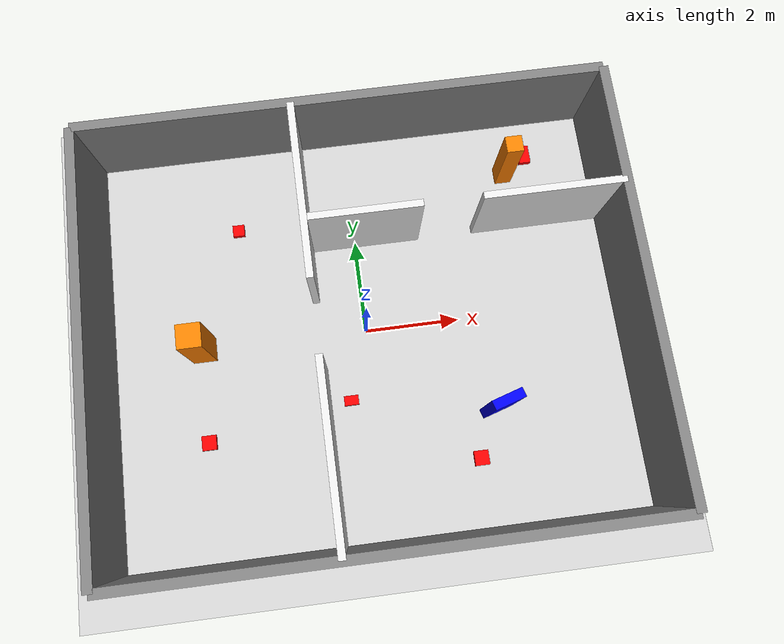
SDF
<?xml version="1.0" ?>
<!-- Simple 3-room layout for Gazebo Sim (Harmonic) -->
<sdf version="1.6">
  <world name="wheelchair_rooms">

    <!-- Gazebo Sim System Plugins -->
    <plugin filename="gz-sim-physics-system"
            name="gz::sim::systems::Physics">
    </plugin>
    <plugin filename="gz-sim-user-commands-system"
            name="gz::sim::systems::UserCommands">
    </plugin>
    <plugin filename="gz-sim-scene-broadcaster-system"
            name="gz::sim::systems::SceneBroadcaster">
    </plugin>
    <plugin filename="gz-sim-sensors-system"
            name="gz::sim::systems::Sensors">
      <render_engine>ogre2</render_engine>
    </plugin>

    <physics name="default_physics" type="ode" default="true">
      <max_step_size>0.005</max_step_size>
      <real_time_factor>1.0</real_time_factor>
      <real_time_update_rate>200</real_time_update_rate>
      <ode>
        <solver>
          <type>quick</type>
          <iters>80</iters>
          <sor>1.4</sor>
        </solver>
        <constraints>
          <cfm>0.0</cfm>
          <erp>0.15</erp>
          <contact_max_correcting_vel>0.2</contact_max_correcting_vel>
          <contact_surface_layer>0.0015</contact_surface_layer>
        </constraints>
      </ode>
    </physics>

    <!-- Sun (inline directional light instead of model://sun) -->
    <light type="directional" name="sun">
      <cast_shadows>true</cast_shadows>
      <pose>0 0 10 0 0 0</pose>
      <diffuse>0.8 0.8 0.8 1</diffuse>
      <specular>0.2 0.2 0.2 1</specular>
      <attenuation>
        <range>1000</range>
        <constant>0.9</constant>
        <linear>0.01</linear>
        <quadratic>0.001</quadratic>
      </attenuation>
      <direction>-0.5 0.1 -0.9</direction>
    </light>

    <!-- Ground Plane (inline instead of model://ground_plane) -->
    <model name="ground_plane">
      <static>true</static>
      <link name="link">
        <collision name="collision">
          <geometry>
            <plane>
              <normal>0 0 1</normal>
              <size>100 100</size>
            </plane>
          </geometry>
        </collision>
        <visual name="visual">
          <geometry>
            <plane>
              <normal>0 0 1</normal>
              <size>100 100</size>
            </plane>
          </geometry>
          <material>
            <ambient>0.8 0.8 0.8 1</ambient>
            <diffuse>0.8 0.8 0.8 1</diffuse>
            <specular>0.8 0.8 0.8 1</specular>
          </material>
        </visual>
      </link>
    </model>

    <!-- Outer shell ~11 m x 9 m inner floor -->
    <model name="wall_outer_n">
      <static>true</static>
      <pose>0 4.5 1.0 0 0 0</pose>
      <link name="link">
        <collision name="c"><geometry><box><size>11 0.2 2.0</size></box></geometry></collision>
        <visual name="v"><geometry><box><size>11 0.2 2.0</size></box></geometry>
          <material><ambient>0.5 0.5 0.5 1</ambient><diffuse>0.5 0.5 0.5 1</diffuse></material></visual>
      </link>
    </model>
    <model name="wall_outer_s">
      <static>true</static>
      <pose>0 -4.5 1.0 0 0 0</pose>
      <link name="link">
        <collision name="c"><geometry><box><size>11 0.2 2.0</size></box></geometry></collision>
        <visual name="v"><geometry><box><size>11 0.2 2.0</size></box></geometry>
          <material><ambient>0.5 0.5 0.5 1</ambient><diffuse>0.5 0.5 0.5 1</diffuse></material></visual>
      </link>
    </model>
    <model name="wall_outer_w">
      <static>true</static>
      <pose>-5.5 0 1.0 0 0 0</pose>
      <link name="link">
        <collision name="c"><geometry><box><size>0.2 9 2.0</size></box></geometry></collision>
        <visual name="v"><geometry><box><size>0.2 9 2.0</size></box></geometry>
          <material><ambient>0.5 0.5 0.5 1</ambient><diffuse>0.5 0.5 0.5 1</diffuse></material></visual>
      </link>
    </model>
    <model name="wall_outer_e">
      <static>true</static>
      <pose>5.5 0 1.0 0 0 0</pose>
      <link name="link">
        <collision name="c"><geometry><box><size>0.2 9 2.0</size></box></geometry></collision>
        <visual name="v"><geometry><box><size>0.2 9 2.0</size></box></geometry>
          <material><ambient>0.5 0.5 0.5 1</ambient><diffuse>0.5 0.5 0.5 1</diffuse></material></visual>
      </link>
    </model>

    <!-- Vertical partition at x = -1, doorway centered on origin (y gap +/-0.75) -->
    <model name="wall_div_v_low">
      <static>true</static>
      <pose>-1 -2.625 1.0 0 0 0</pose>
      <link name="link">
        <collision name="c"><geometry><box><size>0.15 3.75 2.0</size></box></geometry></collision>
        <visual name="v"><geometry><box><size>0.15 3.75 2.0</size></box></geometry>
          <material><ambient>0.9 0.9 0.9 1</ambient><diffuse>0.9 0.9 0.9 1</diffuse></material></visual>
      </link>
    </model>
    <model name="wall_div_v_high">
      <static>true</static>
      <pose>-1 2.625 1.0 0 0 0</pose>
      <link name="link">
        <collision name="c"><geometry><box><size>0.15 3.75 2.0</size></box></geometry></collision>
        <visual name="v"><geometry><box><size>0.15 3.75 2.0</size></box></geometry>
          <material><ambient>0.9 0.9 0.9 1</ambient><diffuse>0.9 0.9 0.9 1</diffuse></material></visual>
      </link>
    </model>

    <!-- Horizontal partition at y = 2, door gap around x = 2 -->
    <model name="wall_div_h_left">
      <static>true</static>
      <pose>0.2375 2 1.0 0 0 0</pose>
      <link name="link">
        <collision name="c"><geometry><box><size>2.325 0.15 2.0</size></box></geometry></collision>
        <visual name="v"><geometry><box><size>2.325 0.15 2.0</size></box></geometry>
          <material><ambient>0.9 0.9 0.9 1</ambient><diffuse>0.9 0.9 0.9 1</diffuse></material></visual>
      </link>
    </model>
    <model name="wall_div_h_right">
      <static>true</static>
      <pose>4.05 2 1.0 0 0 0</pose>
      <link name="link">
        <collision name="c"><geometry><box><size>2.9 0.15 2.0</size></box></geometry></collision>
        <visual name="v"><geometry><box><size>2.9 0.15 2.0</size></box></geometry>
          <material><ambient>0.9 0.9 0.9 1</ambient><diffuse>0.9 0.9 0.9 1</diffuse></material></visual>
      </link>
    </model>

    <!-- Obstacles inside rooms -->
    <model name="obs_box_left">
      <static>true</static>
      <pose>-3.5 0 0.8 0 0 0</pose>
      <link name="link">
        <collision name="c"><geometry><box><size>0.5 0.5 1.6</size></box></geometry></collision>
        <visual name="v"><geometry><box><size>0.5 0.5 1.6</size></box></geometry>
          <material><ambient>1.0 0.5 0.0 1</ambient><diffuse>1.0 0.5 0.0 1</diffuse></material></visual>
      </link>
    </model>
    <model name="obs_box_br">
      <static>true</static>
      <pose>2.5 -2 0.8 0 0 0.3</pose>
      <link name="link">
        <collision name="c"><geometry><box><size>0.65 0.2 1.6</size></box></geometry></collision>
        <visual name="v"><geometry><box><size>0.65 0.2 1.6</size></box></geometry>
          <material><ambient>0.0 0.0 1.0 1</ambient><diffuse>0.0 0.0 1.0 1</diffuse></material></visual>
      </link>
    </model>
    <model name="obs_box_tr">
      <static>true</static>
      <pose>3.5 3.2 0.8 0 0 0</pose>
      <link name="link">
        <collision name="c"><geometry><box><size>0.35 0.35 1.6</size></box></geometry></collision>
        <visual name="v"><geometry><box><size>0.35 0.35 1.6</size></box></geometry>
          <material><ambient>1.0 0.5 0.0 1</ambient><diffuse>1.0 0.5 0.0 1</diffuse></material></visual>
      </link>
    </model>

    <!-- Left room — mid path, robot must steer around it -->
    <model name="us_obs_left_1">
      <static>true</static>
      <pose>-3.5 -2.0 0.30 0 0 0</pose>
      <link name="link">
        <collision name="c"><geometry><box><size>0.30 0.30 0.10</size></box></geometry></collision>
        <visual name="v"><geometry><box><size>0.30 0.30 0.10</size></box></geometry>
          <material><ambient>1.0 0.0 0.0 1</ambient><diffuse>1.0 0.0 0.0 1</diffuse></material></visual>
      </link>
    </model>

    <!-- Left room — near wall, robot must avoid while passing -->
    <model name="us_obs_left_2">
      <static>true</static>
      <pose>-2.5 2.5 0.30 0 0 0</pose>
      <link name="link">
        <collision name="c"><geometry><box><size>0.25 0.25 0.10</size></box></geometry></collision>
        <visual name="v"><geometry><box><size>0.25 0.25 0.10</size></box></geometry>
          <material><ambient>1.0 0.0 0.0 1</ambient><diffuse>1.0 0.0 0.0 1</diffuse></material></visual>
      </link>
    </model>

    <!-- Doorway approach area — robot approaching from centre room -->
    <model name="us_obs_centre_door">
      <static>true</static>
      <pose>-0.5 -1.5 0.30 0 0 0</pose>
      <link name="link">
        <collision name="c"><geometry><box><size>0.30 0.20 0.10</size></box></geometry></collision>
        <visual name="v"><geometry><box><size>0.30 0.20 0.10</size></box></geometry>
          <material><ambient>1.0 0.0 0.0 1</ambient><diffuse>1.0 0.0 0.0 1</diffuse></material></visual>
      </link>
    </model>

    <!-- Bottom-right room — along navigation corridor -->
    <model name="us_obs_br_1">
      <static>true</static>
      <pose>2.0 -3.0 0.30 0 0 0</pose>
      <link name="link">
        <collision name="c"><geometry><box><size>0.30 0.30 0.10</size></box></geometry></collision>
        <visual name="v"><geometry><box><size>0.30 0.30 0.10</size></box></geometry>
          <material><ambient>1.0 0.0 0.0 1</ambient><diffuse>1.0 0.0 0.0 1</diffuse></material></visual>
      </link>
    </model>

    <!-- Top-right room — robot must detect while navigating to goal -->
    <model name="us_obs_tr_1">
      <static>true</static>
      <pose>4.0 3.5 0.30 0 0 0</pose>
      <link name="link">
        <collision name="c"><geometry><box><size>0.25 0.40 0.10</size></box></geometry></collision>
        <visual name="v"><geometry><box><size>0.25 0.40 0.10</size></box></geometry>
          <material><ambient>1.0 0.0 0.0 1</ambient><diffuse>1.0 0.0 0.0 1</diffuse></material></visual>
      </link>
    </model>

  </world>
</sdf>
